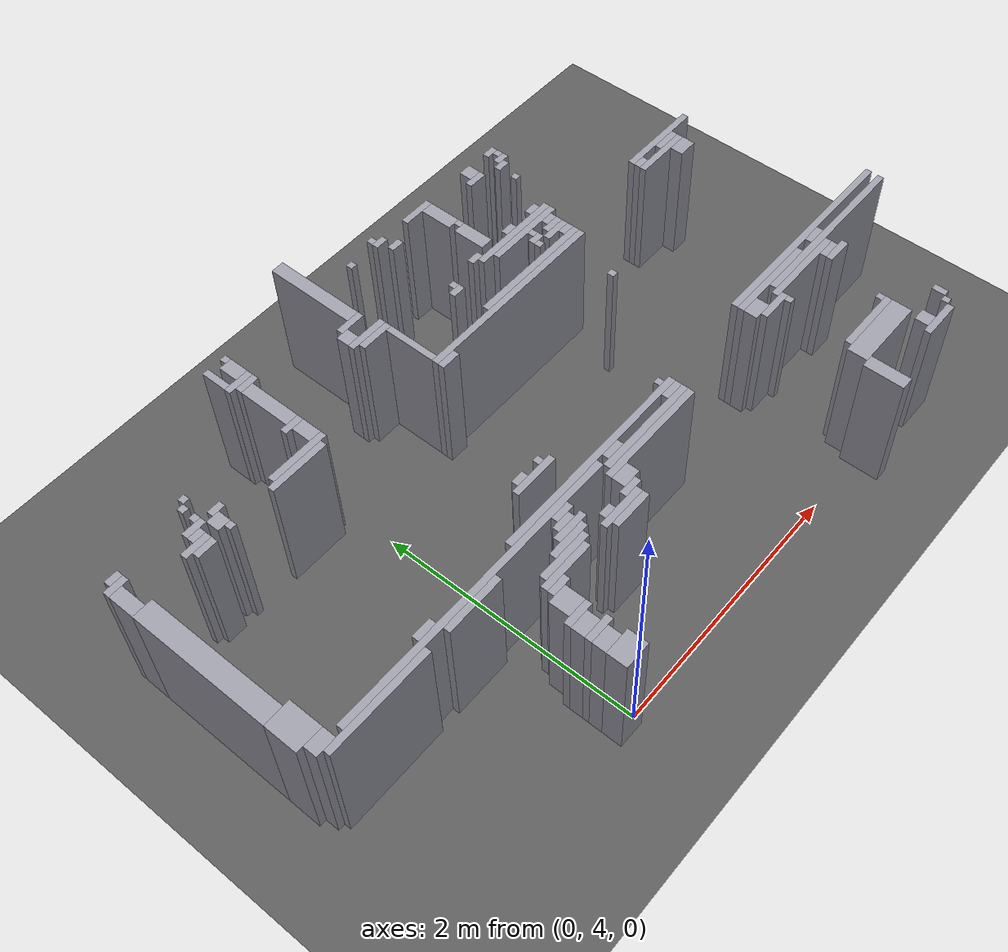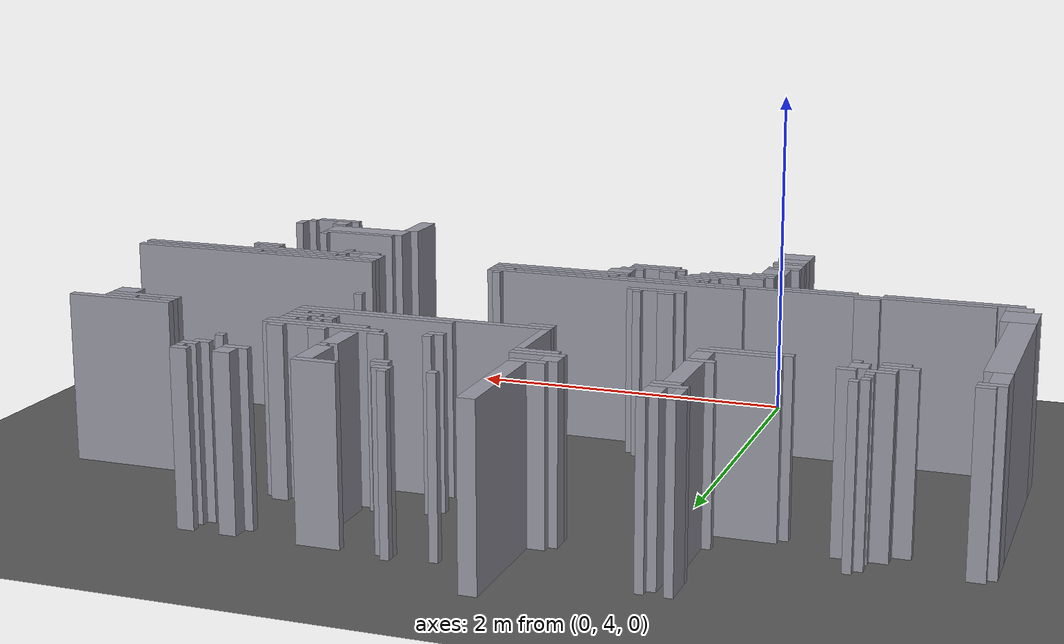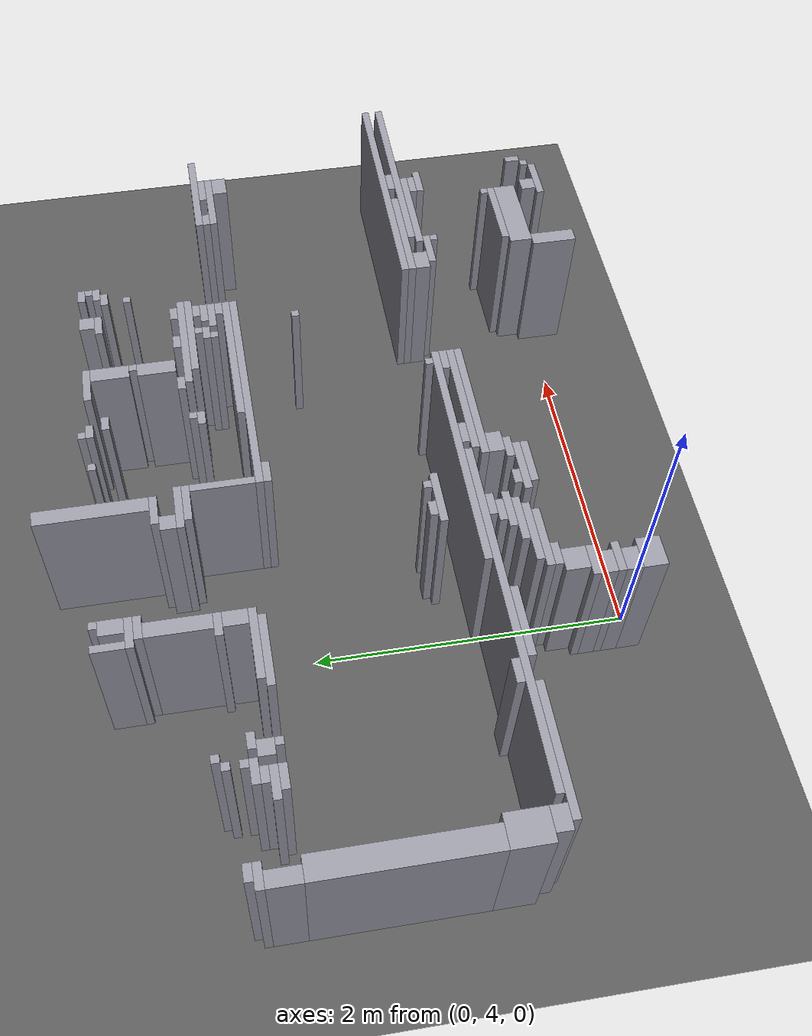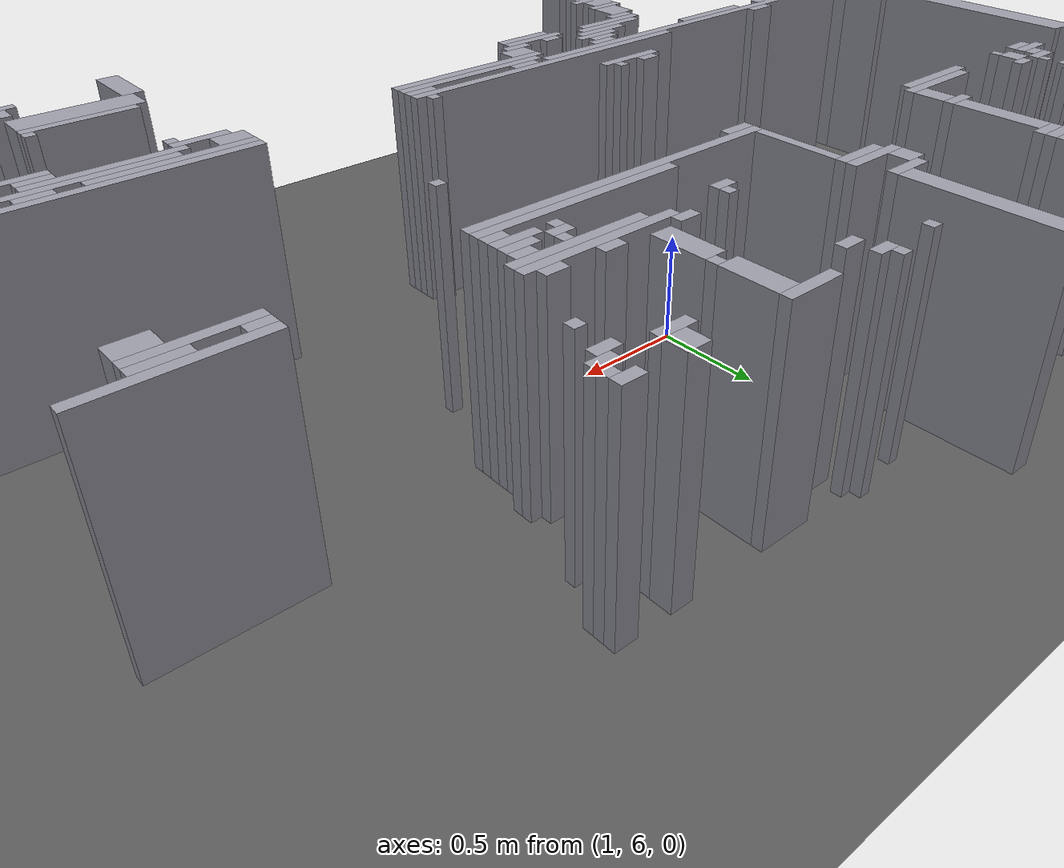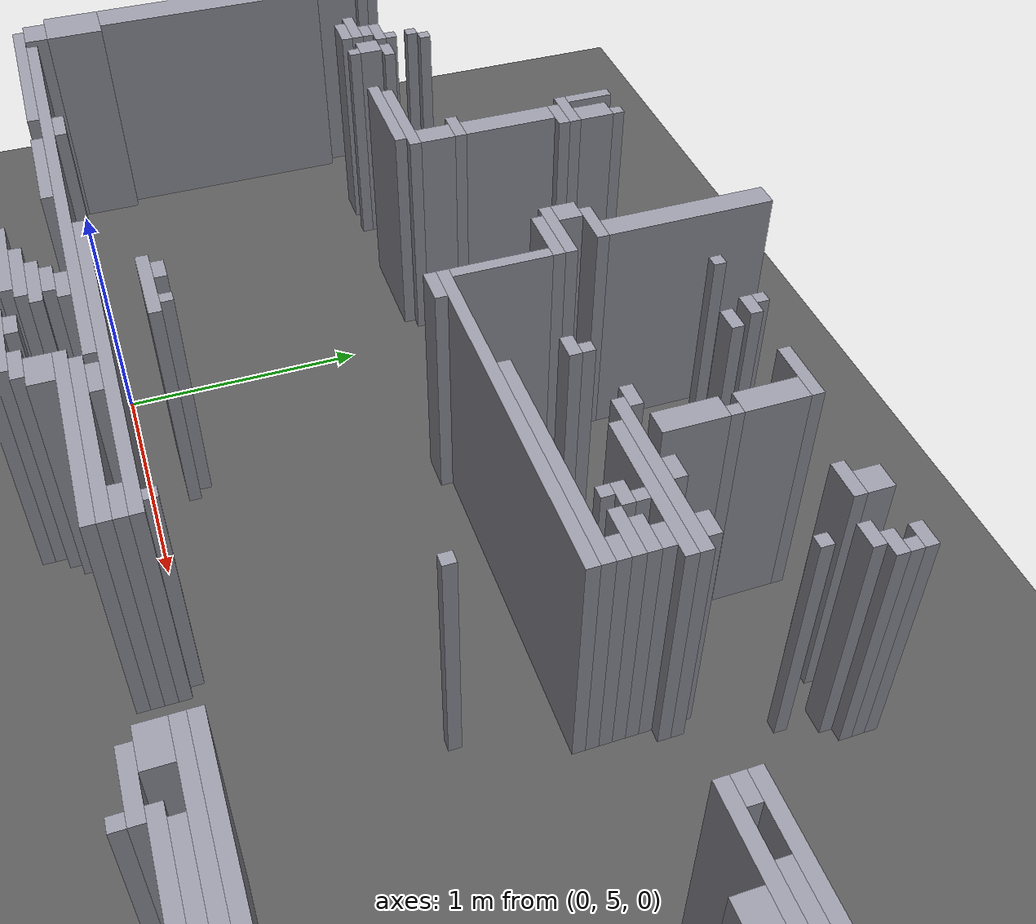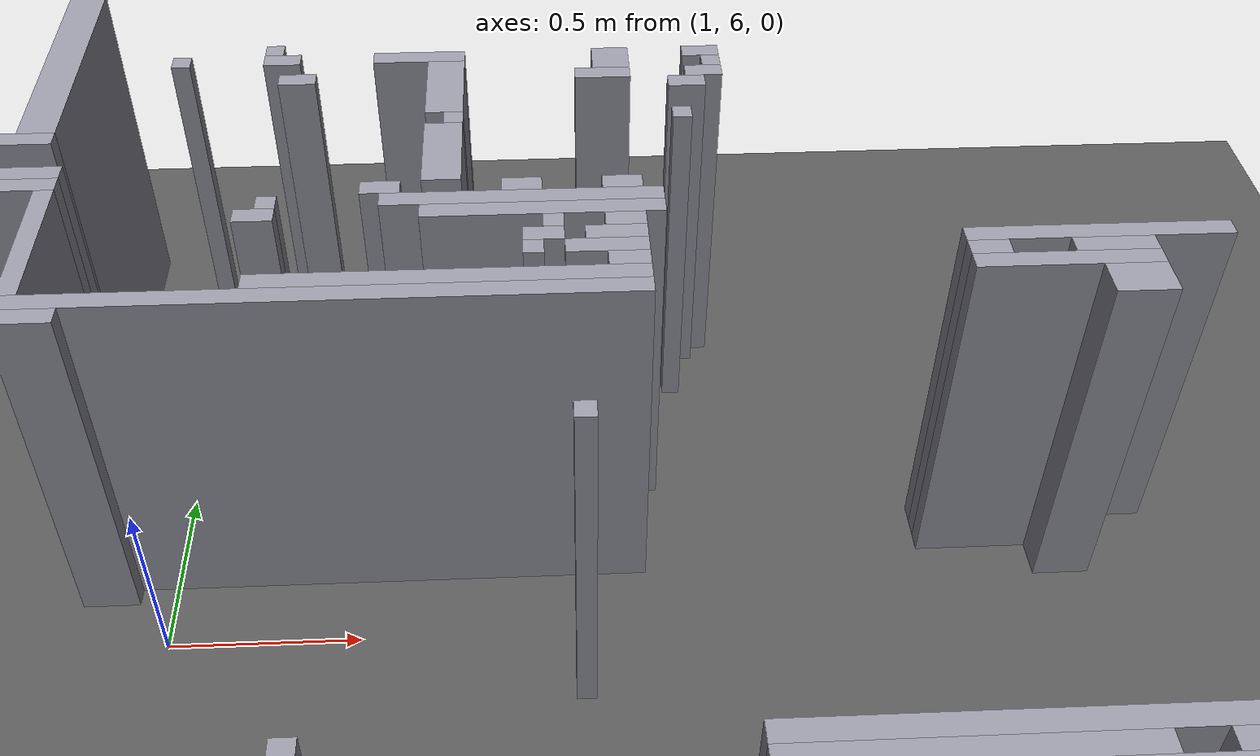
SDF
<sdf version="1.8">
 <world name="dimi">
  <model name="ground">
   <static>true</static>
   <link name="ground_link">
    <collision name="c"><geometry><plane><normal>0 0 1</normal><size>60 60</size></plane></geometry></collision>
    <visual name="v">
     <geometry><plane><normal>0 0 1</normal><size>60 60</size></plane></geometry>
     <material><ambient>0.3 0.3 0.3 1</ambient><diffuse>0.35 0.35 0.35 1</diffuse></material>
    </visual>
   </link>
  </model>
  <model name="walls">
   <static>true</static>
   <link name="wall_206">
    <pose>0.7030 7.2420 0.5000 0 0 0</pose>
    <collision name="c"><geometry><box><size>0.1000 0.7000 1.0000</size></box></geometry></collision>
    <visual name="v">
     <geometry><box><size>0.1000 0.7000 1.0000</size></box></geometry>
     <material><ambient>0.5 0.5 0.55 1</ambient><diffuse>0.6 0.6 0.65 1</diffuse></material>
    </visual>
   </link>
   <link name="wall_226">
    <pose>-0.2220 7.1920 0.5000 0 0 0</pose>
    <collision name="c"><geometry><box><size>0.0500 0.2000 1.0000</size></box></geometry></collision>
    <visual name="v">
     <geometry><box><size>0.0500 0.2000 1.0000</size></box></geometry>
     <material><ambient>0.5 0.5 0.55 1</ambient><diffuse>0.6 0.6 0.65 1</diffuse></material>
    </visual>
   </link>
   <link name="wall_227">
    <pose>-0.0720 7.2670 0.5000 0 0 0</pose>
    <collision name="c"><geometry><box><size>0.0500 0.0500 1.0000</size></box></geometry></collision>
    <visual name="v">
     <geometry><box><size>0.0500 0.0500 1.0000</size></box></geometry>
     <material><ambient>0.5 0.5 0.55 1</ambient><diffuse>0.6 0.6 0.65 1</diffuse></material>
    </visual>
   </link>
   <link name="wall_228">
    <pose>1.2780 7.2670 0.5000 0 0 0</pose>
    <collision name="c"><geometry><box><size>0.0500 0.0500 1.0000</size></box></geometry></collision>
    <visual name="v">
     <geometry><box><size>0.0500 0.0500 1.0000</size></box></geometry>
     <material><ambient>0.5 0.5 0.55 1</ambient><diffuse>0.6 0.6 0.65 1</diffuse></material>
    </visual>
   </link>
   <link name="wall_233">
    <pose>-0.0970 7.1670 0.5000 0 0 0</pose>
    <collision name="c"><geometry><box><size>0.1000 0.1500 1.0000</size></box></geometry></collision>
    <visual name="v">
     <geometry><box><size>0.1000 0.1500 1.0000</size></box></geometry>
     <material><ambient>0.5 0.5 0.55 1</ambient><diffuse>0.6 0.6 0.65 1</diffuse></material>
    </visual>
   </link>
   <link name="wall_234">
    <pose>1.0280 7.2170 0.5000 0 0 0</pose>
    <collision name="c"><geometry><box><size>0.0500 0.0500 1.0000</size></box></geometry></collision>
    <visual name="v">
     <geometry><box><size>0.0500 0.0500 1.0000</size></box></geometry>
     <material><ambient>0.5 0.5 0.55 1</ambient><diffuse>0.6 0.6 0.65 1</diffuse></material>
    </visual>
   </link>
   <link name="wall_235">
    <pose>1.3030 7.2170 0.5000 0 0 0</pose>
    <collision name="c"><geometry><box><size>0.1000 0.0500 1.0000</size></box></geometry></collision>
    <visual name="v">
     <geometry><box><size>0.1000 0.0500 1.0000</size></box></geometry>
     <material><ambient>0.5 0.5 0.55 1</ambient><diffuse>0.6 0.6 0.65 1</diffuse></material>
    </visual>
   </link>
   <link name="wall_236">
    <pose>1.6780 7.2170 0.5000 0 0 0</pose>
    <collision name="c"><geometry><box><size>0.2500 0.0500 1.0000</size></box></geometry></collision>
    <visual name="v">
     <geometry><box><size>0.2500 0.0500 1.0000</size></box></geometry>
     <material><ambient>0.5 0.5 0.55 1</ambient><diffuse>0.6 0.6 0.65 1</diffuse></material>
    </visual>
   </link>
   <link name="wall_237">
    <pose>2.2030 7.1920 0.5000 0 0 0</pose>
    <collision name="c"><geometry><box><size>0.1000 0.1000 1.0000</size></box></geometry></collision>
    <visual name="v">
     <geometry><box><size>0.1000 0.1000 1.0000</size></box></geometry>
     <material><ambient>0.5 0.5 0.55 1</ambient><diffuse>0.6 0.6 0.65 1</diffuse></material>
    </visual>
   </link>
   <link name="wall_238">
    <pose>2.4530 7.2170 0.5000 0 0 0</pose>
    <collision name="c"><geometry><box><size>0.1000 0.0500 1.0000</size></box></geometry></collision>
    <visual name="v">
     <geometry><box><size>0.1000 0.0500 1.0000</size></box></geometry>
     <material><ambient>0.5 0.5 0.55 1</ambient><diffuse>0.6 0.6 0.65 1</diffuse></material>
    </visual>
   </link>
   <link name="wall_241">
    <pose>1.7530 7.0670 0.5000 0 0 0</pose>
    <collision name="c"><geometry><box><size>0.1000 0.2500 1.0000</size></box></geometry></collision>
    <visual name="v">
     <geometry><box><size>0.1000 0.2500 1.0000</size></box></geometry>
     <material><ambient>0.5 0.5 0.55 1</ambient><diffuse>0.6 0.6 0.65 1</diffuse></material>
    </visual>
   </link>
   <link name="wall_242">
    <pose>2.4780 7.1670 0.5000 0 0 0</pose>
    <collision name="c"><geometry><box><size>0.0500 0.0500 1.0000</size></box></geometry></collision>
    <visual name="v">
     <geometry><box><size>0.0500 0.0500 1.0000</size></box></geometry>
     <material><ambient>0.5 0.5 0.55 1</ambient><diffuse>0.6 0.6 0.65 1</diffuse></material>
    </visual>
   </link>
   <link name="wall_246">
    <pose>1.3530 7.1170 0.5000 0 0 0</pose>
    <collision name="c"><geometry><box><size>0.1000 0.0500 1.0000</size></box></geometry></collision>
    <visual name="v">
     <geometry><box><size>0.1000 0.0500 1.0000</size></box></geometry>
     <material><ambient>0.5 0.5 0.55 1</ambient><diffuse>0.6 0.6 0.65 1</diffuse></material>
    </visual>
   </link>
   <link name="wall_247">
    <pose>2.1780 7.1170 0.5000 0 0 0</pose>
    <collision name="c"><geometry><box><size>0.1500 0.0500 1.0000</size></box></geometry></collision>
    <visual name="v">
     <geometry><box><size>0.1500 0.0500 1.0000</size></box></geometry>
     <material><ambient>0.5 0.5 0.55 1</ambient><diffuse>0.6 0.6 0.65 1</diffuse></material>
    </visual>
   </link>
   <link name="wall_248">
    <pose>2.4530 7.1170 0.5000 0 0 0</pose>
    <collision name="c"><geometry><box><size>0.1000 0.0500 1.0000</size></box></geometry></collision>
    <visual name="v">
     <geometry><box><size>0.1000 0.0500 1.0000</size></box></geometry>
     <material><ambient>0.5 0.5 0.55 1</ambient><diffuse>0.6 0.6 0.65 1</diffuse></material>
    </visual>
   </link>
   <link name="wall_252">
    <pose>-0.1470 7.0670 0.5000 0 0 0</pose>
    <collision name="c"><geometry><box><size>0.2000 0.0500 1.0000</size></box></geometry></collision>
    <visual name="v">
     <geometry><box><size>0.2000 0.0500 1.0000</size></box></geometry>
     <material><ambient>0.5 0.5 0.55 1</ambient><diffuse>0.6 0.6 0.65 1</diffuse></material>
    </visual>
   </link>
   <link name="wall_253">
    <pose>2.4030 7.0670 0.5000 0 0 0</pose>
    <collision name="c"><geometry><box><size>0.1000 0.0500 1.0000</size></box></geometry></collision>
    <visual name="v">
     <geometry><box><size>0.1000 0.0500 1.0000</size></box></geometry>
     <material><ambient>0.5 0.5 0.55 1</ambient><diffuse>0.6 0.6 0.65 1</diffuse></material>
    </visual>
   </link>
   <link name="wall_255">
    <pose>-0.1220 7.0170 0.5000 0 0 0</pose>
    <collision name="c"><geometry><box><size>0.1500 0.0500 1.0000</size></box></geometry></collision>
    <visual name="v">
     <geometry><box><size>0.1500 0.0500 1.0000</size></box></geometry>
     <material><ambient>0.5 0.5 0.55 1</ambient><diffuse>0.6 0.6 0.65 1</diffuse></material>
    </visual>
   </link>
   <link name="wall_257">
    <pose>-0.1470 6.7920 0.5000 0 0 0</pose>
    <collision name="c"><geometry><box><size>0.1000 0.4000 1.0000</size></box></geometry></collision>
    <visual name="v">
     <geometry><box><size>0.1000 0.4000 1.0000</size></box></geometry>
     <material><ambient>0.5 0.5 0.55 1</ambient><diffuse>0.6 0.6 0.65 1</diffuse></material>
    </visual>
   </link>
   <link name="wall_260">
    <pose>1.7780 6.9170 0.5000 0 0 0</pose>
    <collision name="c"><geometry><box><size>0.0500 0.0500 1.0000</size></box></geometry></collision>
    <visual name="v">
     <geometry><box><size>0.0500 0.0500 1.0000</size></box></geometry>
     <material><ambient>0.5 0.5 0.55 1</ambient><diffuse>0.6 0.6 0.65 1</diffuse></material>
    </visual>
   </link>
   <link name="wall_261">
    <pose>2.3780 6.9170 0.5000 0 0 0</pose>
    <collision name="c"><geometry><box><size>0.0500 0.0500 1.0000</size></box></geometry></collision>
    <visual name="v">
     <geometry><box><size>0.0500 0.0500 1.0000</size></box></geometry>
     <material><ambient>0.5 0.5 0.55 1</ambient><diffuse>0.6 0.6 0.65 1</diffuse></material>
    </visual>
   </link>
   <link name="wall_265">
    <pose>0.6530 6.8670 0.5000 0 0 0</pose>
    <collision name="c"><geometry><box><size>0.2000 0.0500 1.0000</size></box></geometry></collision>
    <visual name="v">
     <geometry><box><size>0.2000 0.0500 1.0000</size></box></geometry>
     <material><ambient>0.5 0.5 0.55 1</ambient><diffuse>0.6 0.6 0.65 1</diffuse></material>
    </visual>
   </link>
   <link name="wall_266">
    <pose>1.7530 6.7670 0.5000 0 0 0</pose>
    <collision name="c"><geometry><box><size>0.1000 0.2500 1.0000</size></box></geometry></collision>
    <visual name="v">
     <geometry><box><size>0.1000 0.2500 1.0000</size></box></geometry>
     <material><ambient>0.5 0.5 0.55 1</ambient><diffuse>0.6 0.6 0.65 1</diffuse></material>
    </visual>
   </link>
   <link name="wall_269">
    <pose>0.5530 6.7920 0.5000 0 0 0</pose>
    <collision name="c"><geometry><box><size>0.1000 0.1000 1.0000</size></box></geometry></collision>
    <visual name="v">
     <geometry><box><size>0.1000 0.1000 1.0000</size></box></geometry>
     <material><ambient>0.5 0.5 0.55 1</ambient><diffuse>0.6 0.6 0.65 1</diffuse></material>
    </visual>
   </link>
   <link name="wall_272">
    <pose>0.6530 6.7170 0.5000 0 0 0</pose>
    <collision name="c"><geometry><box><size>0.3000 0.0500 1.0000</size></box></geometry></collision>
    <visual name="v">
     <geometry><box><size>0.3000 0.0500 1.0000</size></box></geometry>
     <material><ambient>0.5 0.5 0.55 1</ambient><diffuse>0.6 0.6 0.65 1</diffuse></material>
    </visual>
   </link>
   <link name="wall_275">
    <pose>-0.9720 6.6670 0.5000 0 0 0</pose>
    <collision name="c"><geometry><box><size>0.0500 0.0500 1.0000</size></box></geometry></collision>
    <visual name="v">
     <geometry><box><size>0.0500 0.0500 1.0000</size></box></geometry>
     <material><ambient>0.5 0.5 0.55 1</ambient><diffuse>0.6 0.6 0.65 1</diffuse></material>
    </visual>
   </link>
   <link name="wall_276">
    <pose>0.6780 6.6670 0.5000 0 0 0</pose>
    <collision name="c"><geometry><box><size>0.2500 0.0500 1.0000</size></box></geometry></collision>
    <visual name="v">
     <geometry><box><size>0.2500 0.0500 1.0000</size></box></geometry>
     <material><ambient>0.5 0.5 0.55 1</ambient><diffuse>0.6 0.6 0.65 1</diffuse></material>
    </visual>
   </link>
   <link name="wall_279">
    <pose>-1.0220 6.6170 0.5000 0 0 0</pose>
    <collision name="c"><geometry><box><size>0.0500 0.0500 1.0000</size></box></geometry></collision>
    <visual name="v">
     <geometry><box><size>0.0500 0.0500 1.0000</size></box></geometry>
     <material><ambient>0.5 0.5 0.55 1</ambient><diffuse>0.6 0.6 0.65 1</diffuse></material>
    </visual>
   </link>
   <link name="wall_280">
    <pose>0.7780 6.4420 0.5000 0 0 0</pose>
    <collision name="c"><geometry><box><size>0.0500 0.4000 1.0000</size></box></geometry></collision>
    <visual name="v">
     <geometry><box><size>0.0500 0.4000 1.0000</size></box></geometry>
     <material><ambient>0.5 0.5 0.55 1</ambient><diffuse>0.6 0.6 0.65 1</diffuse></material>
    </visual>
   </link>
   <link name="wall_281">
    <pose>1.6030 6.6170 0.5000 0 0 0</pose>
    <collision name="c"><geometry><box><size>0.1000 0.0500 1.0000</size></box></geometry></collision>
    <visual name="v">
     <geometry><box><size>0.1000 0.0500 1.0000</size></box></geometry>
     <material><ambient>0.5 0.5 0.55 1</ambient><diffuse>0.6 0.6 0.65 1</diffuse></material>
    </visual>
   </link>
   <link name="wall_282">
    <pose>1.9530 6.6170 0.5000 0 0 0</pose>
    <collision name="c"><geometry><box><size>0.1000 0.0500 1.0000</size></box></geometry></collision>
    <visual name="v">
     <geometry><box><size>0.1000 0.0500 1.0000</size></box></geometry>
     <material><ambient>0.5 0.5 0.55 1</ambient><diffuse>0.6 0.6 0.65 1</diffuse></material>
    </visual>
   </link>
   <link name="wall_283">
    <pose>2.2030 6.6170 0.5000 0 0 0</pose>
    <collision name="c"><geometry><box><size>0.1000 0.0500 1.0000</size></box></geometry></collision>
    <visual name="v">
     <geometry><box><size>0.1000 0.0500 1.0000</size></box></geometry>
     <material><ambient>0.5 0.5 0.55 1</ambient><diffuse>0.6 0.6 0.65 1</diffuse></material>
    </visual>
   </link>
   <link name="wall_284">
    <pose>-1.5970 6.5670 0.5000 0 0 0</pose>
    <collision name="c"><geometry><box><size>0.1000 0.0500 1.0000</size></box></geometry></collision>
    <visual name="v">
     <geometry><box><size>0.1000 0.0500 1.0000</size></box></geometry>
     <material><ambient>0.5 0.5 0.55 1</ambient><diffuse>0.6 0.6 0.65 1</diffuse></material>
    </visual>
   </link>
   <link name="wall_285">
    <pose>-0.1720 6.5670 0.5000 0 0 0</pose>
    <collision name="c"><geometry><box><size>0.1500 0.0500 1.0000</size></box></geometry></collision>
    <visual name="v">
     <geometry><box><size>0.1500 0.0500 1.0000</size></box></geometry>
     <material><ambient>0.5 0.5 0.55 1</ambient><diffuse>0.6 0.6 0.65 1</diffuse></material>
    </visual>
   </link>
   <link name="wall_286">
    <pose>1.3280 6.5670 0.5000 0 0 0</pose>
    <collision name="c"><geometry><box><size>0.0500 0.0500 1.0000</size></box></geometry></collision>
    <visual name="v">
     <geometry><box><size>0.0500 0.0500 1.0000</size></box></geometry>
     <material><ambient>0.5 0.5 0.55 1</ambient><diffuse>0.6 0.6 0.65 1</diffuse></material>
    </visual>
   </link>
   <link name="wall_287">
    <pose>1.9530 6.5670 0.5000 0 0 0</pose>
    <collision name="c"><geometry><box><size>0.7000 0.0500 1.0000</size></box></geometry></collision>
    <visual name="v">
     <geometry><box><size>0.7000 0.0500 1.0000</size></box></geometry>
     <material><ambient>0.5 0.5 0.55 1</ambient><diffuse>0.6 0.6 0.65 1</diffuse></material>
    </visual>
   </link>
   <link name="wall_289">
    <pose>-1.6220 6.5170 0.5000 0 0 0</pose>
    <collision name="c"><geometry><box><size>0.1500 0.0500 1.0000</size></box></geometry></collision>
    <visual name="v">
     <geometry><box><size>0.1500 0.0500 1.0000</size></box></geometry>
     <material><ambient>0.5 0.5 0.55 1</ambient><diffuse>0.6 0.6 0.65 1</diffuse></material>
    </visual>
   </link>
   <link name="wall_290">
    <pose>-1.0220 6.5170 0.5000 0 0 0</pose>
    <collision name="c"><geometry><box><size>0.0500 0.0500 1.0000</size></box></geometry></collision>
    <visual name="v">
     <geometry><box><size>0.0500 0.0500 1.0000</size></box></geometry>
     <material><ambient>0.5 0.5 0.55 1</ambient><diffuse>0.6 0.6 0.65 1</diffuse></material>
    </visual>
   </link>
   <link name="wall_291">
    <pose>-0.1470 6.4670 0.5000 0 0 0</pose>
    <collision name="c"><geometry><box><size>0.1000 0.1500 1.0000</size></box></geometry></collision>
    <visual name="v">
     <geometry><box><size>0.1000 0.1500 1.0000</size></box></geometry>
     <material><ambient>0.5 0.5 0.55 1</ambient><diffuse>0.6 0.6 0.65 1</diffuse></material>
    </visual>
   </link>
   <link name="wall_292">
    <pose>1.3030 6.5170 0.5000 0 0 0</pose>
    <collision name="c"><geometry><box><size>0.1000 0.0500 1.0000</size></box></geometry></collision>
    <visual name="v">
     <geometry><box><size>0.1000 0.0500 1.0000</size></box></geometry>
     <material><ambient>0.5 0.5 0.55 1</ambient><diffuse>0.6 0.6 0.65 1</diffuse></material>
    </visual>
   </link>
   <link name="wall_293">
    <pose>2.0030 6.5170 0.5000 0 0 0</pose>
    <collision name="c"><geometry><box><size>0.6000 0.0500 1.0000</size></box></geometry></collision>
    <visual name="v">
     <geometry><box><size>0.6000 0.0500 1.0000</size></box></geometry>
     <material><ambient>0.5 0.5 0.55 1</ambient><diffuse>0.6 0.6 0.65 1</diffuse></material>
    </visual>
   </link>
   <link name="wall_295">
    <pose>-1.6470 6.3920 0.5000 0 0 0</pose>
    <collision name="c"><geometry><box><size>0.1000 0.2000 1.0000</size></box></geometry></collision>
    <visual name="v">
     <geometry><box><size>0.1000 0.2000 1.0000</size></box></geometry>
     <material><ambient>0.5 0.5 0.55 1</ambient><diffuse>0.6 0.6 0.65 1</diffuse></material>
    </visual>
   </link>
   <link name="wall_296">
    <pose>-1.0720 6.4670 0.5000 0 0 0</pose>
    <collision name="c"><geometry><box><size>0.1500 0.0500 1.0000</size></box></geometry></collision>
    <visual name="v">
     <geometry><box><size>0.1500 0.0500 1.0000</size></box></geometry>
     <material><ambient>0.5 0.5 0.55 1</ambient><diffuse>0.6 0.6 0.65 1</diffuse></material>
    </visual>
   </link>
   <link name="wall_297">
    <pose>-0.8970 6.4670 0.5000 0 0 0</pose>
    <collision name="c"><geometry><box><size>0.1000 0.0500 1.0000</size></box></geometry></collision>
    <visual name="v">
     <geometry><box><size>0.1000 0.0500 1.0000</size></box></geometry>
     <material><ambient>0.5 0.5 0.55 1</ambient><diffuse>0.6 0.6 0.65 1</diffuse></material>
    </visual>
   </link>
   <link name="wall_298">
    <pose>2.0280 6.4670 0.5000 0 0 0</pose>
    <collision name="c"><geometry><box><size>0.0500 0.0500 1.0000</size></box></geometry></collision>
    <visual name="v">
     <geometry><box><size>0.0500 0.0500 1.0000</size></box></geometry>
     <material><ambient>0.5 0.5 0.55 1</ambient><diffuse>0.6 0.6 0.65 1</diffuse></material>
    </visual>
   </link>
   <link name="wall_299">
    <pose>2.2030 6.4670 0.5000 0 0 0</pose>
    <collision name="c"><geometry><box><size>0.1000 0.0500 1.0000</size></box></geometry></collision>
    <visual name="v">
     <geometry><box><size>0.1000 0.0500 1.0000</size></box></geometry>
     <material><ambient>0.5 0.5 0.55 1</ambient><diffuse>0.6 0.6 0.65 1</diffuse></material>
    </visual>
   </link>
   <link name="wall_302">
    <pose>-1.0970 6.4170 0.5000 0 0 0</pose>
    <collision name="c"><geometry><box><size>0.1000 0.0500 1.0000</size></box></geometry></collision>
    <visual name="v">
     <geometry><box><size>0.1000 0.0500 1.0000</size></box></geometry>
     <material><ambient>0.5 0.5 0.55 1</ambient><diffuse>0.6 0.6 0.65 1</diffuse></material>
    </visual>
   </link>
   <link name="wall_303">
    <pose>-0.9470 6.3920 0.5000 0 0 0</pose>
    <collision name="c"><geometry><box><size>0.1000 0.1000 1.0000</size></box></geometry></collision>
    <visual name="v">
     <geometry><box><size>0.1000 0.1000 1.0000</size></box></geometry>
     <material><ambient>0.5 0.5 0.55 1</ambient><diffuse>0.6 0.6 0.65 1</diffuse></material>
    </visual>
   </link>
   <link name="wall_304">
    <pose>2.0030 6.4170 0.5000 0 0 0</pose>
    <collision name="c"><geometry><box><size>0.1000 0.0500 1.0000</size></box></geometry></collision>
    <visual name="v">
     <geometry><box><size>0.1000 0.0500 1.0000</size></box></geometry>
     <material><ambient>0.5 0.5 0.55 1</ambient><diffuse>0.6 0.6 0.65 1</diffuse></material>
    </visual>
   </link>
   <link name="wall_305">
    <pose>2.1780 6.4170 0.5000 0 0 0</pose>
    <collision name="c"><geometry><box><size>0.1500 0.0500 1.0000</size></box></geometry></collision>
    <visual name="v">
     <geometry><box><size>0.1500 0.0500 1.0000</size></box></geometry>
     <material><ambient>0.5 0.5 0.55 1</ambient><diffuse>0.6 0.6 0.65 1</diffuse></material>
    </visual>
   </link>
   <link name="wall_309">
    <pose>-1.1470 6.3670 0.5000 0 0 0</pose>
    <collision name="c"><geometry><box><size>0.2000 0.0500 1.0000</size></box></geometry></collision>
    <visual name="v">
     <geometry><box><size>0.2000 0.0500 1.0000</size></box></geometry>
     <material><ambient>0.5 0.5 0.55 1</ambient><diffuse>0.6 0.6 0.65 1</diffuse></material>
    </visual>
   </link>
   <link name="wall_310">
    <pose>-0.3220 6.3670 0.5000 0 0 0</pose>
    <collision name="c"><geometry><box><size>0.4500 0.0500 1.0000</size></box></geometry></collision>
    <visual name="v">
     <geometry><box><size>0.4500 0.0500 1.0000</size></box></geometry>
     <material><ambient>0.5 0.5 0.55 1</ambient><diffuse>0.6 0.6 0.65 1</diffuse></material>
    </visual>
   </link>
   <link name="wall_311">
    <pose>1.9780 6.3670 0.5000 0 0 0</pose>
    <collision name="c"><geometry><box><size>0.0500 0.0500 1.0000</size></box></geometry></collision>
    <visual name="v">
     <geometry><box><size>0.0500 0.0500 1.0000</size></box></geometry>
     <material><ambient>0.5 0.5 0.55 1</ambient><diffuse>0.6 0.6 0.65 1</diffuse></material>
    </visual>
   </link>
   <link name="wall_312">
    <pose>2.1530 6.3670 0.5000 0 0 0</pose>
    <collision name="c"><geometry><box><size>0.2000 0.0500 1.0000</size></box></geometry></collision>
    <visual name="v">
     <geometry><box><size>0.2000 0.0500 1.0000</size></box></geometry>
     <material><ambient>0.5 0.5 0.55 1</ambient><diffuse>0.6 0.6 0.65 1</diffuse></material>
    </visual>
   </link>
   <link name="wall_313">
    <pose>3.3280 6.3670 0.5000 0 0 0</pose>
    <collision name="c"><geometry><box><size>0.6500 0.0500 1.0000</size></box></geometry></collision>
    <visual name="v">
     <geometry><box><size>0.6500 0.0500 1.0000</size></box></geometry>
     <material><ambient>0.5 0.5 0.55 1</ambient><diffuse>0.6 0.6 0.65 1</diffuse></material>
    </visual>
   </link>
   <link name="wall_319">
    <pose>-1.1220 6.3170 0.5000 0 0 0</pose>
    <collision name="c"><geometry><box><size>0.1500 0.0500 1.0000</size></box></geometry></collision>
    <visual name="v">
     <geometry><box><size>0.1500 0.0500 1.0000</size></box></geometry>
     <material><ambient>0.5 0.5 0.55 1</ambient><diffuse>0.6 0.6 0.65 1</diffuse></material>
    </visual>
   </link>
   <link name="wall_320">
    <pose>-0.9220 6.3170 0.5000 0 0 0</pose>
    <collision name="c"><geometry><box><size>0.0500 0.0500 1.0000</size></box></geometry></collision>
    <visual name="v">
     <geometry><box><size>0.0500 0.0500 1.0000</size></box></geometry>
     <material><ambient>0.5 0.5 0.55 1</ambient><diffuse>0.6 0.6 0.65 1</diffuse></material>
    </visual>
   </link>
   <link name="wall_321">
    <pose>-0.3720 6.3170 0.5000 0 0 0</pose>
    <collision name="c"><geometry><box><size>0.4500 0.0500 1.0000</size></box></geometry></collision>
    <visual name="v">
     <geometry><box><size>0.4500 0.0500 1.0000</size></box></geometry>
     <material><ambient>0.5 0.5 0.55 1</ambient><diffuse>0.6 0.6 0.65 1</diffuse></material>
    </visual>
   </link>
   <link name="wall_322">
    <pose>2.2030 6.3170 0.5000 0 0 0</pose>
    <collision name="c"><geometry><box><size>0.1000 0.0500 1.0000</size></box></geometry></collision>
    <visual name="v">
     <geometry><box><size>0.1000 0.0500 1.0000</size></box></geometry>
     <material><ambient>0.5 0.5 0.55 1</ambient><diffuse>0.6 0.6 0.65 1</diffuse></material>
    </visual>
   </link>
   <link name="wall_323">
    <pose>3.0530 6.3170 0.5000 0 0 0</pose>
    <collision name="c"><geometry><box><size>0.1000 0.0500 1.0000</size></box></geometry></collision>
    <visual name="v">
     <geometry><box><size>0.1000 0.0500 1.0000</size></box></geometry>
     <material><ambient>0.5 0.5 0.55 1</ambient><diffuse>0.6 0.6 0.65 1</diffuse></material>
    </visual>
   </link>
   <link name="wall_324">
    <pose>3.3530 6.3170 0.5000 0 0 0</pose>
    <collision name="c"><geometry><box><size>0.2000 0.0500 1.0000</size></box></geometry></collision>
    <visual name="v">
     <geometry><box><size>0.2000 0.0500 1.0000</size></box></geometry>
     <material><ambient>0.5 0.5 0.55 1</ambient><diffuse>0.6 0.6 0.65 1</diffuse></material>
    </visual>
   </link>
   <link name="wall_326">
    <pose>-1.6220 5.7670 0.5000 0 0 0</pose>
    <collision name="c"><geometry><box><size>0.1500 1.0500 1.0000</size></box></geometry></collision>
    <visual name="v">
     <geometry><box><size>0.1500 1.0500 1.0000</size></box></geometry>
     <material><ambient>0.5 0.5 0.55 1</ambient><diffuse>0.6 0.6 0.65 1</diffuse></material>
    </visual>
   </link>
   <link name="wall_327">
    <pose>1.7780 6.2670 0.5000 0 0 0</pose>
    <collision name="c"><geometry><box><size>0.9500 0.0500 1.0000</size></box></geometry></collision>
    <visual name="v">
     <geometry><box><size>0.9500 0.0500 1.0000</size></box></geometry>
     <material><ambient>0.5 0.5 0.55 1</ambient><diffuse>0.6 0.6 0.65 1</diffuse></material>
    </visual>
   </link>
   <link name="wall_328">
    <pose>3.2280 6.2670 0.5000 0 0 0</pose>
    <collision name="c"><geometry><box><size>0.4500 0.0500 1.0000</size></box></geometry></collision>
    <visual name="v">
     <geometry><box><size>0.4500 0.0500 1.0000</size></box></geometry>
     <material><ambient>0.5 0.5 0.55 1</ambient><diffuse>0.6 0.6 0.65 1</diffuse></material>
    </visual>
   </link>
   <link name="wall_330">
    <pose>1.5030 6.2170 0.5000 0 0 0</pose>
    <collision name="c"><geometry><box><size>1.5000 0.0500 1.0000</size></box></geometry></collision>
    <visual name="v">
     <geometry><box><size>1.5000 0.0500 1.0000</size></box></geometry>
     <material><ambient>0.5 0.5 0.55 1</ambient><diffuse>0.6 0.6 0.65 1</diffuse></material>
    </visual>
   </link>
   <link name="wall_331">
    <pose>3.3780 6.1920 0.5000 0 0 0</pose>
    <collision name="c"><geometry><box><size>0.1500 0.1000 1.0000</size></box></geometry></collision>
    <visual name="v">
     <geometry><box><size>0.1500 0.1000 1.0000</size></box></geometry>
     <material><ambient>0.5 0.5 0.55 1</ambient><diffuse>0.6 0.6 0.65 1</diffuse></material>
    </visual>
   </link>
   <link name="wall_333">
    <pose>0.8280 6.1670 0.5000 0 0 0</pose>
    <collision name="c"><geometry><box><size>0.1500 0.0500 1.0000</size></box></geometry></collision>
    <visual name="v">
     <geometry><box><size>0.1500 0.0500 1.0000</size></box></geometry>
     <material><ambient>0.5 0.5 0.55 1</ambient><diffuse>0.6 0.6 0.65 1</diffuse></material>
    </visual>
   </link>
   <link name="wall_343">
    <pose>2.0780 5.8170 0.5000 0 0 0</pose>
    <collision name="c"><geometry><box><size>0.0500 0.0500 1.0000</size></box></geometry></collision>
    <visual name="v">
     <geometry><box><size>0.0500 0.0500 1.0000</size></box></geometry>
     <material><ambient>0.5 0.5 0.55 1</ambient><diffuse>0.6 0.6 0.65 1</diffuse></material>
    </visual>
   </link>
   <link name="wall_363">
    <pose>-1.5970 5.1170 0.5000 0 0 0</pose>
    <collision name="c"><geometry><box><size>0.2000 0.2500 1.0000</size></box></geometry></collision>
    <visual name="v">
     <geometry><box><size>0.2000 0.2500 1.0000</size></box></geometry>
     <material><ambient>0.5 0.5 0.55 1</ambient><diffuse>0.6 0.6 0.65 1</diffuse></material>
    </visual>
   </link>
   <link name="wall_364">
    <pose>0.4030 5.2170 0.5000 0 0 0</pose>
    <collision name="c"><geometry><box><size>0.1000 0.0500 1.0000</size></box></geometry></collision>
    <visual name="v">
     <geometry><box><size>0.1000 0.0500 1.0000</size></box></geometry>
     <material><ambient>0.5 0.5 0.55 1</ambient><diffuse>0.6 0.6 0.65 1</diffuse></material>
    </visual>
   </link>
   <link name="wall_365">
    <pose>0.5780 5.2170 0.5000 0 0 0</pose>
    <collision name="c"><geometry><box><size>0.0500 0.0500 1.0000</size></box></geometry></collision>
    <visual name="v">
     <geometry><box><size>0.0500 0.0500 1.0000</size></box></geometry>
     <material><ambient>0.5 0.5 0.55 1</ambient><diffuse>0.6 0.6 0.65 1</diffuse></material>
    </visual>
   </link>
   <link name="wall_368">
    <pose>0.4780 5.1670 0.5000 0 0 0</pose>
    <collision name="c"><geometry><box><size>0.3500 0.0500 1.0000</size></box></geometry></collision>
    <visual name="v">
     <geometry><box><size>0.3500 0.0500 1.0000</size></box></geometry>
     <material><ambient>0.5 0.5 0.55 1</ambient><diffuse>0.6 0.6 0.65 1</diffuse></material>
    </visual>
   </link>
   <link name="wall_379">
    <pose>1.5280 5.0170 0.5000 0 0 0</pose>
    <collision name="c"><geometry><box><size>0.0500 0.0500 1.0000</size></box></geometry></collision>
    <visual name="v">
     <geometry><box><size>0.0500 0.0500 1.0000</size></box></geometry>
     <material><ambient>0.5 0.5 0.55 1</ambient><diffuse>0.6 0.6 0.65 1</diffuse></material>
    </visual>
   </link>
   <link name="wall_380">
    <pose>3.1780 5.0170 0.5000 0 0 0</pose>
    <collision name="c"><geometry><box><size>1.6500 0.0500 1.0000</size></box></geometry></collision>
    <visual name="v">
     <geometry><box><size>1.6500 0.0500 1.0000</size></box></geometry>
     <material><ambient>0.5 0.5 0.55 1</ambient><diffuse>0.6 0.6 0.65 1</diffuse></material>
    </visual>
   </link>
   <link name="wall_384">
    <pose>-1.5720 4.9420 0.5000 0 0 0</pose>
    <collision name="c"><geometry><box><size>0.1500 0.1000 1.0000</size></box></geometry></collision>
    <visual name="v">
     <geometry><box><size>0.1500 0.1000 1.0000</size></box></geometry>
     <material><ambient>0.5 0.5 0.55 1</ambient><diffuse>0.6 0.6 0.65 1</diffuse></material>
    </visual>
   </link>
   <link name="wall_385">
    <pose>-0.7220 4.9670 0.5000 0 0 0</pose>
    <collision name="c"><geometry><box><size>0.1500 0.0500 1.0000</size></box></geometry></collision>
    <visual name="v">
     <geometry><box><size>0.1500 0.0500 1.0000</size></box></geometry>
     <material><ambient>0.5 0.5 0.55 1</ambient><diffuse>0.6 0.6 0.65 1</diffuse></material>
    </visual>
   </link>
   <link name="wall_386">
    <pose>0.8030 4.9670 0.5000 0 0 0</pose>
    <collision name="c"><geometry><box><size>1.6000 0.0500 1.0000</size></box></geometry></collision>
    <visual name="v">
     <geometry><box><size>1.6000 0.0500 1.0000</size></box></geometry>
     <material><ambient>0.5 0.5 0.55 1</ambient><diffuse>0.6 0.6 0.65 1</diffuse></material>
    </visual>
   </link>
   <link name="wall_387">
    <pose>2.7030 4.9670 0.5000 0 0 0</pose>
    <collision name="c"><geometry><box><size>0.7000 0.0500 1.0000</size></box></geometry></collision>
    <visual name="v">
     <geometry><box><size>0.7000 0.0500 1.0000</size></box></geometry>
     <material><ambient>0.5 0.5 0.55 1</ambient><diffuse>0.6 0.6 0.65 1</diffuse></material>
    </visual>
   </link>
   <link name="wall_388">
    <pose>3.2280 4.9670 0.5000 0 0 0</pose>
    <collision name="c"><geometry><box><size>0.1500 0.0500 1.0000</size></box></geometry></collision>
    <visual name="v">
     <geometry><box><size>0.1500 0.0500 1.0000</size></box></geometry>
     <material><ambient>0.5 0.5 0.55 1</ambient><diffuse>0.6 0.6 0.65 1</diffuse></material>
    </visual>
   </link>
   <link name="wall_395">
    <pose>-0.3220 4.9170 0.5000 0 0 0</pose>
    <collision name="c"><geometry><box><size>2.2500 0.0500 1.0000</size></box></geometry></collision>
    <visual name="v">
     <geometry><box><size>2.2500 0.0500 1.0000</size></box></geometry>
     <material><ambient>0.5 0.5 0.55 1</ambient><diffuse>0.6 0.6 0.65 1</diffuse></material>
    </visual>
   </link>
   <link name="wall_396">
    <pose>0.9280 4.9170 0.5000 0 0 0</pose>
    <collision name="c"><geometry><box><size>0.1500 0.0500 1.0000</size></box></geometry></collision>
    <visual name="v">
     <geometry><box><size>0.1500 0.0500 1.0000</size></box></geometry>
     <material><ambient>0.5 0.5 0.55 1</ambient><diffuse>0.6 0.6 0.65 1</diffuse></material>
    </visual>
   </link>
   <link name="wall_397">
    <pose>1.5280 4.9170 0.5000 0 0 0</pose>
    <collision name="c"><geometry><box><size>0.1500 0.0500 1.0000</size></box></geometry></collision>
    <visual name="v">
     <geometry><box><size>0.1500 0.0500 1.0000</size></box></geometry>
     <material><ambient>0.5 0.5 0.55 1</ambient><diffuse>0.6 0.6 0.65 1</diffuse></material>
    </visual>
   </link>
   <link name="wall_398">
    <pose>2.4280 4.8920 0.5000 0 0 0</pose>
    <collision name="c"><geometry><box><size>0.1500 0.1000 1.0000</size></box></geometry></collision>
    <visual name="v">
     <geometry><box><size>0.1500 0.1000 1.0000</size></box></geometry>
     <material><ambient>0.5 0.5 0.55 1</ambient><diffuse>0.6 0.6 0.65 1</diffuse></material>
    </visual>
   </link>
   <link name="wall_399">
    <pose>3.3280 4.9170 0.5000 0 0 0</pose>
    <collision name="c"><geometry><box><size>1.3500 0.0500 1.0000</size></box></geometry></collision>
    <visual name="v">
     <geometry><box><size>1.3500 0.0500 1.0000</size></box></geometry>
     <material><ambient>0.5 0.5 0.55 1</ambient><diffuse>0.6 0.6 0.65 1</diffuse></material>
    </visual>
   </link>
   <link name="wall_401">
    <pose>-1.1970 4.8670 0.5000 0 0 0</pose>
    <collision name="c"><geometry><box><size>0.8000 0.0500 1.0000</size></box></geometry></collision>
    <visual name="v">
     <geometry><box><size>0.8000 0.0500 1.0000</size></box></geometry>
     <material><ambient>0.5 0.5 0.55 1</ambient><diffuse>0.6 0.6 0.65 1</diffuse></material>
    </visual>
   </link>
   <link name="wall_402">
    <pose>-0.4220 4.8670 0.5000 0 0 0</pose>
    <collision name="c"><geometry><box><size>0.4500 0.0500 1.0000</size></box></geometry></collision>
    <visual name="v">
     <geometry><box><size>0.4500 0.0500 1.0000</size></box></geometry>
     <material><ambient>0.5 0.5 0.55 1</ambient><diffuse>0.6 0.6 0.65 1</diffuse></material>
    </visual>
   </link>
   <link name="wall_403">
    <pose>0.3780 4.8670 0.5000 0 0 0</pose>
    <collision name="c"><geometry><box><size>0.1500 0.0500 1.0000</size></box></geometry></collision>
    <visual name="v">
     <geometry><box><size>0.1500 0.0500 1.0000</size></box></geometry>
     <material><ambient>0.5 0.5 0.55 1</ambient><diffuse>0.6 0.6 0.65 1</diffuse></material>
    </visual>
   </link>
   <link name="wall_404">
    <pose>1.2030 4.8670 0.5000 0 0 0</pose>
    <collision name="c"><geometry><box><size>0.8000 0.0500 1.0000</size></box></geometry></collision>
    <visual name="v">
     <geometry><box><size>0.8000 0.0500 1.0000</size></box></geometry>
     <material><ambient>0.5 0.5 0.55 1</ambient><diffuse>0.6 0.6 0.65 1</diffuse></material>
    </visual>
   </link>
   <link name="wall_405">
    <pose>2.9280 4.8670 0.5000 0 0 0</pose>
    <collision name="c"><geometry><box><size>0.6500 0.0500 1.0000</size></box></geometry></collision>
    <visual name="v">
     <geometry><box><size>0.6500 0.0500 1.0000</size></box></geometry>
     <material><ambient>0.5 0.5 0.55 1</ambient><diffuse>0.6 0.6 0.65 1</diffuse></material>
    </visual>
   </link>
   <link name="wall_408">
    <pose>0.3280 4.8170 0.5000 0 0 0</pose>
    <collision name="c"><geometry><box><size>0.1500 0.0500 1.0000</size></box></geometry></collision>
    <visual name="v">
     <geometry><box><size>0.1500 0.0500 1.0000</size></box></geometry>
     <material><ambient>0.5 0.5 0.55 1</ambient><diffuse>0.6 0.6 0.65 1</diffuse></material>
    </visual>
   </link>
   <link name="wall_409">
    <pose>1.1780 4.8170 0.5000 0 0 0</pose>
    <collision name="c"><geometry><box><size>0.8500 0.0500 1.0000</size></box></geometry></collision>
    <visual name="v">
     <geometry><box><size>0.8500 0.0500 1.0000</size></box></geometry>
     <material><ambient>0.5 0.5 0.55 1</ambient><diffuse>0.6 0.6 0.65 1</diffuse></material>
    </visual>
   </link>
   <link name="wall_410">
    <pose>2.5280 4.8170 0.5000 0 0 0</pose>
    <collision name="c"><geometry><box><size>0.2500 0.0500 1.0000</size></box></geometry></collision>
    <visual name="v">
     <geometry><box><size>0.2500 0.0500 1.0000</size></box></geometry>
     <material><ambient>0.5 0.5 0.55 1</ambient><diffuse>0.6 0.6 0.65 1</diffuse></material>
    </visual>
   </link>
   <link name="wall_411">
    <pose>3.1780 4.8170 0.5000 0 0 0</pose>
    <collision name="c"><geometry><box><size>0.1500 0.0500 1.0000</size></box></geometry></collision>
    <visual name="v">
     <geometry><box><size>0.1500 0.0500 1.0000</size></box></geometry>
     <material><ambient>0.5 0.5 0.55 1</ambient><diffuse>0.6 0.6 0.65 1</diffuse></material>
    </visual>
   </link>
   <link name="wall_414">
    <pose>0.3280 4.7670 0.5000 0 0 0</pose>
    <collision name="c"><geometry><box><size>0.2500 0.0500 1.0000</size></box></geometry></collision>
    <visual name="v">
     <geometry><box><size>0.2500 0.0500 1.0000</size></box></geometry>
     <material><ambient>0.5 0.5 0.55 1</ambient><diffuse>0.6 0.6 0.65 1</diffuse></material>
    </visual>
   </link>
   <link name="wall_415">
    <pose>0.8280 4.7420 0.5000 0 0 0</pose>
    <collision name="c"><geometry><box><size>0.1500 0.1000 1.0000</size></box></geometry></collision>
    <visual name="v">
     <geometry><box><size>0.1500 0.1000 1.0000</size></box></geometry>
     <material><ambient>0.5 0.5 0.55 1</ambient><diffuse>0.6 0.6 0.65 1</diffuse></material>
    </visual>
   </link>
   <link name="wall_416">
    <pose>2.6280 4.7670 0.5000 0 0 0</pose>
    <collision name="c"><geometry><box><size>0.0500 0.0500 1.0000</size></box></geometry></collision>
    <visual name="v">
     <geometry><box><size>0.0500 0.0500 1.0000</size></box></geometry>
     <material><ambient>0.5 0.5 0.55 1</ambient><diffuse>0.6 0.6 0.65 1</diffuse></material>
    </visual>
   </link>
   <link name="wall_417">
    <pose>3.2030 4.7670 0.5000 0 0 0</pose>
    <collision name="c"><geometry><box><size>0.2000 0.0500 1.0000</size></box></geometry></collision>
    <visual name="v">
     <geometry><box><size>0.2000 0.0500 1.0000</size></box></geometry>
     <material><ambient>0.5 0.5 0.55 1</ambient><diffuse>0.6 0.6 0.65 1</diffuse></material>
    </visual>
   </link>
   <link name="wall_419">
    <pose>0.2530 4.7170 0.5000 0 0 0</pose>
    <collision name="c"><geometry><box><size>0.3000 0.0500 1.0000</size></box></geometry></collision>
    <visual name="v">
     <geometry><box><size>0.3000 0.0500 1.0000</size></box></geometry>
     <material><ambient>0.5 0.5 0.55 1</ambient><diffuse>0.6 0.6 0.65 1</diffuse></material>
    </visual>
   </link>
   <link name="wall_421">
    <pose>0.1530 4.6670 0.5000 0 0 0</pose>
    <collision name="c"><geometry><box><size>0.4000 0.0500 1.0000</size></box></geometry></collision>
    <visual name="v">
     <geometry><box><size>0.4000 0.0500 1.0000</size></box></geometry>
     <material><ambient>0.5 0.5 0.55 1</ambient><diffuse>0.6 0.6 0.65 1</diffuse></material>
    </visual>
   </link>
   <link name="wall_422">
    <pose>0.5530 4.6670 0.5000 0 0 0</pose>
    <collision name="c"><geometry><box><size>0.1000 0.0500 1.0000</size></box></geometry></collision>
    <visual name="v">
     <geometry><box><size>0.1000 0.0500 1.0000</size></box></geometry>
     <material><ambient>0.5 0.5 0.55 1</ambient><diffuse>0.6 0.6 0.65 1</diffuse></material>
    </visual>
   </link>
   <link name="wall_423">
    <pose>0.7780 4.6670 0.5000 0 0 0</pose>
    <collision name="c"><geometry><box><size>0.1500 0.0500 1.0000</size></box></geometry></collision>
    <visual name="v">
     <geometry><box><size>0.1500 0.0500 1.0000</size></box></geometry>
     <material><ambient>0.5 0.5 0.55 1</ambient><diffuse>0.6 0.6 0.65 1</diffuse></material>
    </visual>
   </link>
   <link name="wall_425">
    <pose>0.1030 4.6170 0.5000 0 0 0</pose>
    <collision name="c"><geometry><box><size>0.4000 0.0500 1.0000</size></box></geometry></collision>
    <visual name="v">
     <geometry><box><size>0.4000 0.0500 1.0000</size></box></geometry>
     <material><ambient>0.5 0.5 0.55 1</ambient><diffuse>0.6 0.6 0.65 1</diffuse></material>
    </visual>
   </link>
   <link name="wall_426">
    <pose>0.6280 4.6170 0.5000 0 0 0</pose>
    <collision name="c"><geometry><box><size>0.3500 0.0500 1.0000</size></box></geometry></collision>
    <visual name="v">
     <geometry><box><size>0.3500 0.0500 1.0000</size></box></geometry>
     <material><ambient>0.5 0.5 0.55 1</ambient><diffuse>0.6 0.6 0.65 1</diffuse></material>
    </visual>
   </link>
   <link name="wall_427">
    <pose>-0.0220 4.5670 0.5000 0 0 0</pose>
    <collision name="c"><geometry><box><size>0.1500 0.0500 1.0000</size></box></geometry></collision>
    <visual name="v">
     <geometry><box><size>0.1500 0.0500 1.0000</size></box></geometry>
     <material><ambient>0.5 0.5 0.55 1</ambient><diffuse>0.6 0.6 0.65 1</diffuse></material>
    </visual>
   </link>
   <link name="wall_428">
    <pose>0.6530 4.5670 0.5000 0 0 0</pose>
    <collision name="c"><geometry><box><size>0.3000 0.0500 1.0000</size></box></geometry></collision>
    <visual name="v">
     <geometry><box><size>0.3000 0.0500 1.0000</size></box></geometry>
     <material><ambient>0.5 0.5 0.55 1</ambient><diffuse>0.6 0.6 0.65 1</diffuse></material>
    </visual>
   </link>
   <link name="wall_430">
    <pose>-0.0720 4.4670 0.5000 0 0 0</pose>
    <collision name="c"><geometry><box><size>0.1500 0.1500 1.0000</size></box></geometry></collision>
    <visual name="v">
     <geometry><box><size>0.1500 0.1500 1.0000</size></box></geometry>
     <material><ambient>0.5 0.5 0.55 1</ambient><diffuse>0.6 0.6 0.65 1</diffuse></material>
    </visual>
   </link>
   <link name="wall_433">
    <pose>-0.0970 4.3670 0.5000 0 0 0</pose>
    <collision name="c"><geometry><box><size>0.2000 0.0500 1.0000</size></box></geometry></collision>
    <visual name="v">
     <geometry><box><size>0.2000 0.0500 1.0000</size></box></geometry>
     <material><ambient>0.5 0.5 0.55 1</ambient><diffuse>0.6 0.6 0.65 1</diffuse></material>
    </visual>
   </link>
   <link name="wall_436">
    <pose>-0.1220 4.2920 0.5000 0 0 0</pose>
    <collision name="c"><geometry><box><size>0.1500 0.1000 1.0000</size></box></geometry></collision>
    <visual name="v">
     <geometry><box><size>0.1500 0.1000 1.0000</size></box></geometry>
     <material><ambient>0.5 0.5 0.55 1</ambient><diffuse>0.6 0.6 0.65 1</diffuse></material>
    </visual>
   </link>
   <link name="wall_437">
    <pose>3.0280 4.3170 0.5000 0 0 0</pose>
    <collision name="c"><geometry><box><size>0.0500 0.0500 1.0000</size></box></geometry></collision>
    <visual name="v">
     <geometry><box><size>0.0500 0.0500 1.0000</size></box></geometry>
     <material><ambient>0.5 0.5 0.55 1</ambient><diffuse>0.6 0.6 0.65 1</diffuse></material>
    </visual>
   </link>
   <link name="wall_439">
    <pose>2.8030 4.2670 0.5000 0 0 0</pose>
    <collision name="c"><geometry><box><size>0.5000 0.0500 1.0000</size></box></geometry></collision>
    <visual name="v">
     <geometry><box><size>0.5000 0.0500 1.0000</size></box></geometry>
     <material><ambient>0.5 0.5 0.55 1</ambient><diffuse>0.6 0.6 0.65 1</diffuse></material>
    </visual>
   </link>
   <link name="wall_441">
    <pose>-0.0970 4.2170 0.5000 0 0 0</pose>
    <collision name="c"><geometry><box><size>0.2000 0.0500 1.0000</size></box></geometry></collision>
    <visual name="v">
     <geometry><box><size>0.2000 0.0500 1.0000</size></box></geometry>
     <material><ambient>0.5 0.5 0.55 1</ambient><diffuse>0.6 0.6 0.65 1</diffuse></material>
    </visual>
   </link>
   <link name="wall_442">
    <pose>2.7780 4.1670 0.5000 0 0 0</pose>
    <collision name="c"><geometry><box><size>0.5500 0.1500 1.0000</size></box></geometry></collision>
    <visual name="v">
     <geometry><box><size>0.5500 0.1500 1.0000</size></box></geometry>
     <material><ambient>0.5 0.5 0.55 1</ambient><diffuse>0.6 0.6 0.65 1</diffuse></material>
    </visual>
   </link>
   <link name="wall_446">
    <pose>-0.1220 4.1420 0.5000 0 0 0</pose>
    <collision name="c"><geometry><box><size>0.1500 0.1000 1.0000</size></box></geometry></collision>
    <visual name="v">
     <geometry><box><size>0.1500 0.1000 1.0000</size></box></geometry>
     <material><ambient>0.5 0.5 0.55 1</ambient><diffuse>0.6 0.6 0.65 1</diffuse></material>
    </visual>
   </link>
   <link name="wall_451">
    <pose>-0.0970 4.0170 0.5000 0 0 0</pose>
    <collision name="c"><geometry><box><size>0.2000 0.1500 1.0000</size></box></geometry></collision>
    <visual name="v">
     <geometry><box><size>0.2000 0.1500 1.0000</size></box></geometry>
     <material><ambient>0.5 0.5 0.55 1</ambient><diffuse>0.6 0.6 0.65 1</diffuse></material>
    </visual>
   </link>
   <link name="wall_452">
    <pose>2.5030 3.9420 0.5000 0 0 0</pose>
    <collision name="c"><geometry><box><size>0.1000 0.3000 1.0000</size></box></geometry></collision>
    <visual name="v">
     <geometry><box><size>0.1000 0.3000 1.0000</size></box></geometry>
     <material><ambient>0.5 0.5 0.55 1</ambient><diffuse>0.6 0.6 0.65 1</diffuse></material>
    </visual>
   </link>
   <link name="wall_453">
    <pose>3.3280 4.0420 0.5000 0 0 0</pose>
    <collision name="c"><geometry><box><size>0.0500 0.1000 1.0000</size></box></geometry></collision>
    <visual name="v">
     <geometry><box><size>0.0500 0.1000 1.0000</size></box></geometry>
     <material><ambient>0.5 0.5 0.55 1</ambient><diffuse>0.6 0.6 0.65 1</diffuse></material>
    </visual>
   </link>
   <link name="wall_459">
    <pose>3.0530 3.9920 0.5000 0 0 0</pose>
    <collision name="c"><geometry><box><size>0.1000 0.1000 1.0000</size></box></geometry></collision>
    <visual name="v">
     <geometry><box><size>0.1000 0.1000 1.0000</size></box></geometry>
     <material><ambient>0.5 0.5 0.55 1</ambient><diffuse>0.6 0.6 0.65 1</diffuse></material>
    </visual>
   </link>
   <link name="wall_464">
    <pose>3.2780 3.9670 0.5000 0 0 0</pose>
    <collision name="c"><geometry><box><size>0.0500 0.0500 1.0000</size></box></geometry></collision>
    <visual name="v">
     <geometry><box><size>0.0500 0.0500 1.0000</size></box></geometry>
     <material><ambient>0.5 0.5 0.55 1</ambient><diffuse>0.6 0.6 0.65 1</diffuse></material>
    </visual>
   </link>
   <link name="wall_469">
    <pose>3.1030 3.9170 0.5000 0 0 0</pose>
    <collision name="c"><geometry><box><size>0.3000 0.0500 1.0000</size></box></geometry></collision>
    <visual name="v">
     <geometry><box><size>0.3000 0.0500 1.0000</size></box></geometry>
     <material><ambient>0.5 0.5 0.55 1</ambient><diffuse>0.6 0.6 0.65 1</diffuse></material>
    </visual>
   </link>
  </model>
 </world>
</sdf>
